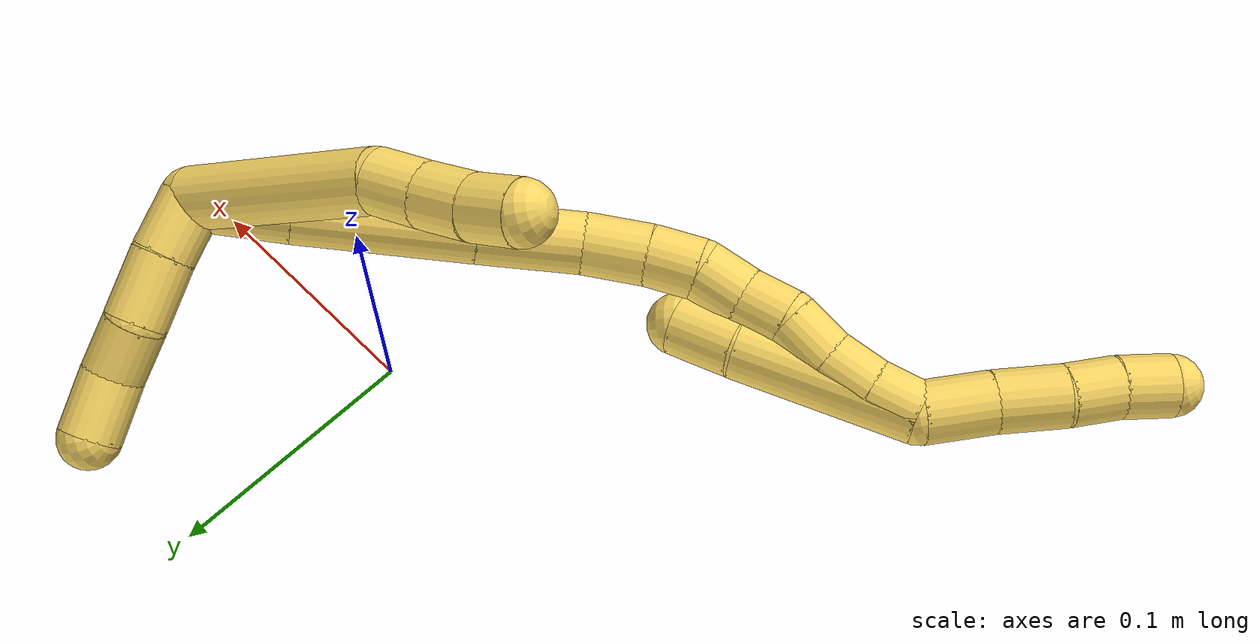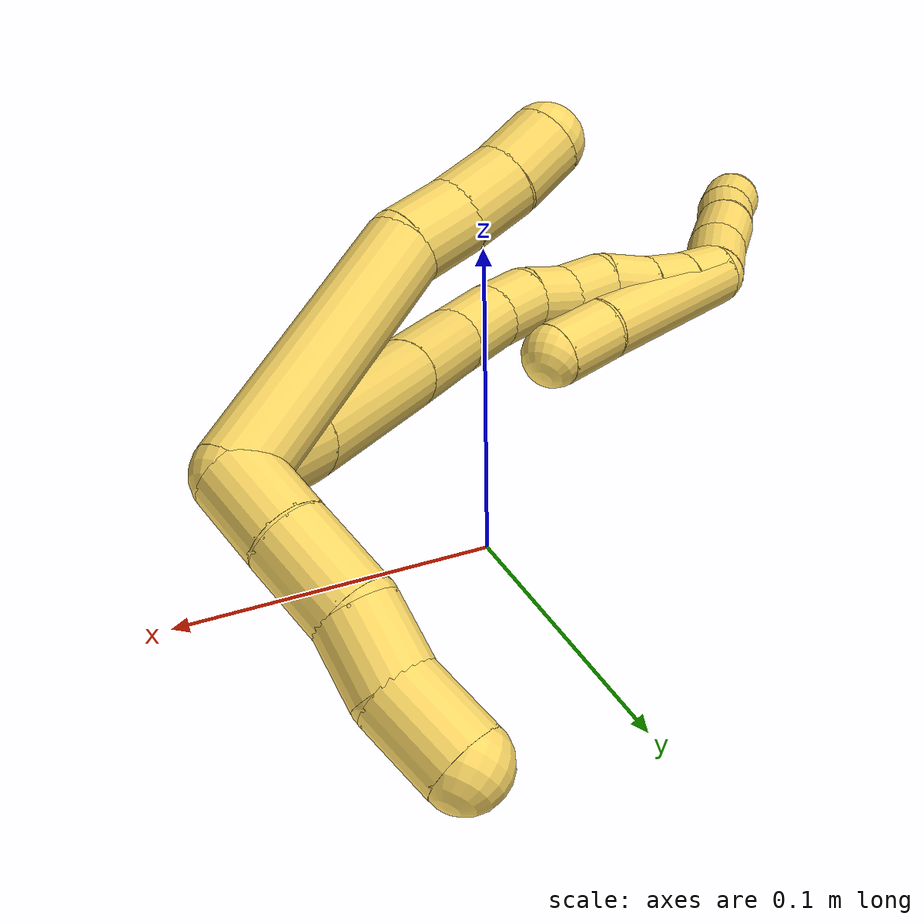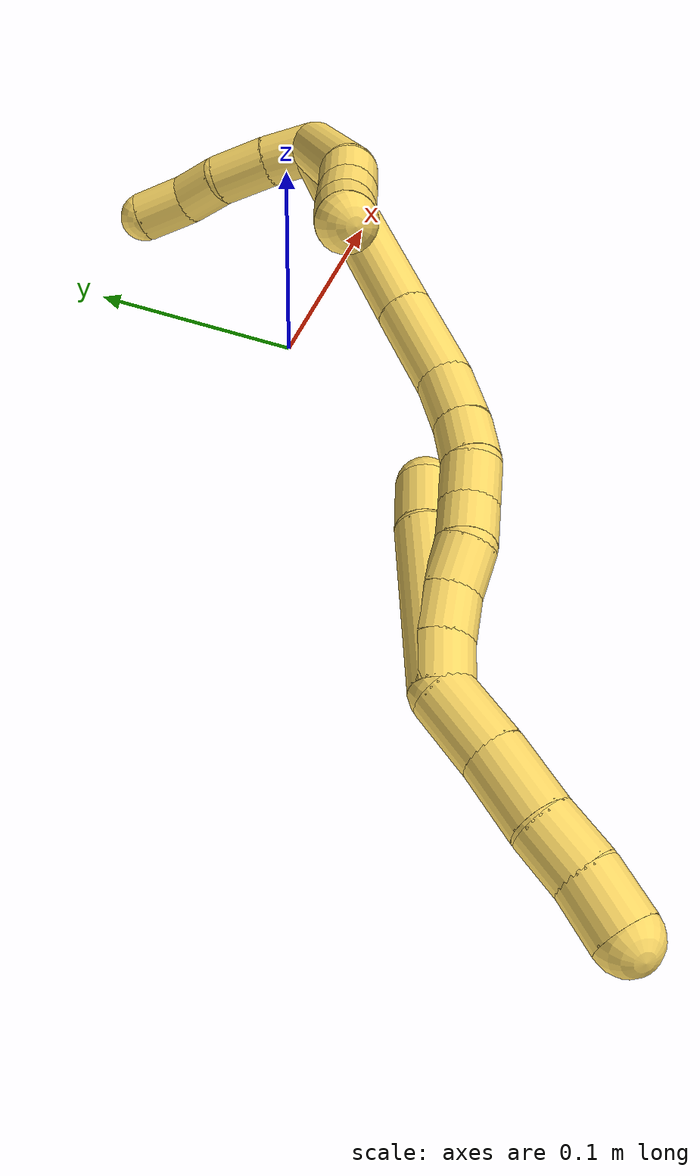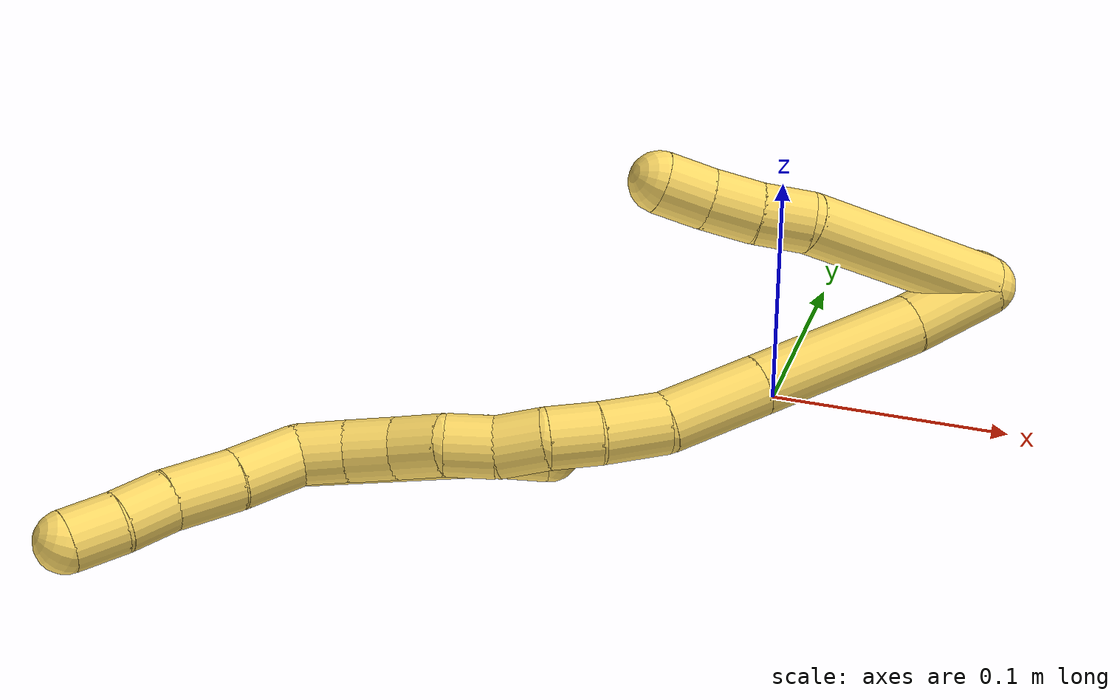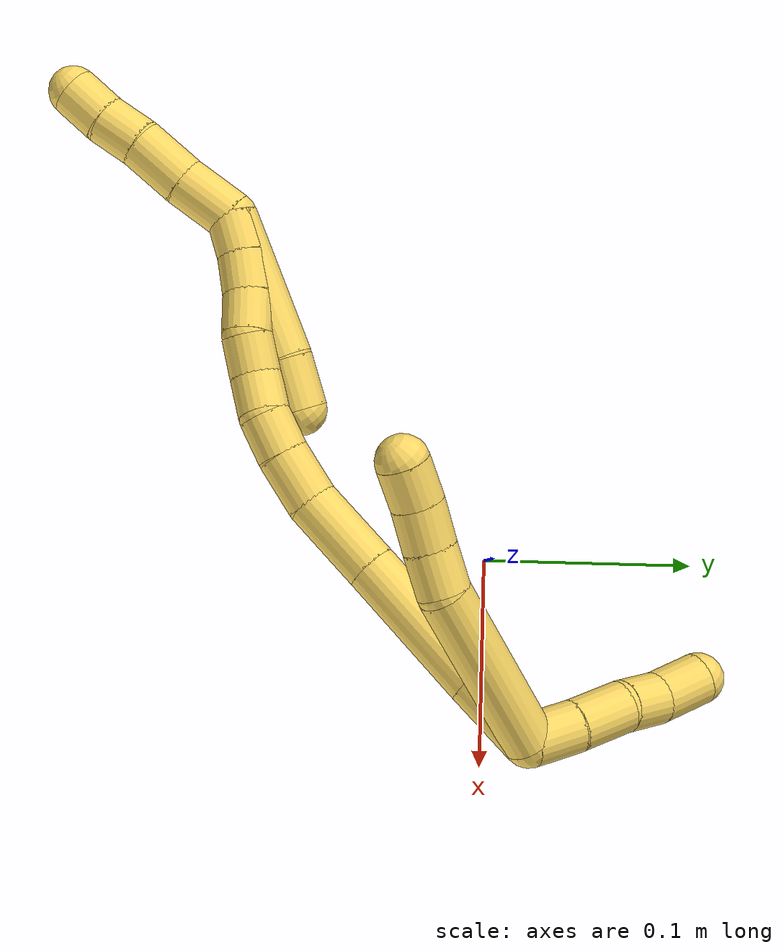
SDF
<sdf version="1.7">
 <world name="default">
  <model name="5">
   <static>0</static>
   <link name="5">
    <collision name="collision-cylinder-e_1_2_8">
     <pose>-0.001906 0.004543 0.043291 -0.104553 -0.043753 0.00229</pose>
     <geometry><cylinder><radius>0.0125</radius><length>0.08714</length></cylinder></geometry>
     <surface>
      <friction><ode><mu>1.16</mu><mu2>1.16</mu2><slip1>0</slip1><slip2>0</slip2></ode></friction>
      <contact><ode><kp>1e+06</kp><kd>1</kd><max_vel>0</max_vel><min_depth>0.001</min_depth></ode></contact>
     </surface>
    </collision>
    <visual name="visual-cylinder-e_1_2_8">
     <pose>-0.001906 0.004543 0.043291 -0.104553 -0.043753 0.00229</pose>
     <geometry><cylinder><radius>0.0125</radius><length>0.08714</length></cylinder></geometry>
     <material><ambient>1 0.858824 0.4 1</ambient></material>
    </visual>
    <collision name="collision-cylinder-e_2_8_9">
     <pose>-0.007242 0.011781 0.096347 -0.26925 -0.326524 0.044616</pose>
     <geometry><cylinder><radius>0.0125</radius><length>0.021393</length></cylinder></geometry>
     <surface>
      <friction><ode><mu>1.16</mu><mu2>1.16</mu2><slip1>0</slip1><slip2>0</slip2></ode></friction>
      <contact><ode><kp>1e+06</kp><kd>1</kd><max_vel>0</max_vel><min_depth>0.001</min_depth></ode></contact>
     </surface>
    </collision>
    <visual name="visual-cylinder-e_2_8_9">
     <pose>-0.007242 0.011781 0.096347 -0.26925 -0.326524 0.044616</pose>
     <geometry><cylinder><radius>0.0125</radius><length>0.021393</length></cylinder></geometry>
     <material><ambient>1 0.858824 0.4 1</ambient></material>
    </visual>
    <collision name="collision-cylinder-e_3_9_10">
     <pose>-0.013089 0.017601 0.115896 -0.309216 -0.231001 0.036159</pose>
     <geometry><cylinder><radius>0.0125</radius><length>0.021099</length></cylinder></geometry>
     <surface>
      <friction><ode><mu>1.16</mu><mu2>1.16</mu2><slip1>0</slip1><slip2>0</slip2></ode></friction>
      <contact><ode><kp>1e+06</kp><kd>1</kd><max_vel>0</max_vel><min_depth>0.001</min_depth></ode></contact>
     </surface>
    </collision>
    <visual name="visual-cylinder-e_3_9_10">
     <pose>-0.013089 0.017601 0.115896 -0.309216 -0.231001 0.036159</pose>
     <geometry><cylinder><radius>0.0125</radius><length>0.021099</length></cylinder></geometry>
     <material><ambient>1 0.858824 0.4 1</ambient></material>
    </visual>
    <collision name="collision-cylinder-e_4_10_6">
     <pose>-0.016836 0.023242 0.135456 -0.251851 -0.131203 0.016633</pose>
     <geometry><cylinder><radius>0.0125</radius><length>0.020368</length></cylinder></geometry>
     <surface>
      <friction><ode><mu>1.16</mu><mu2>1.16</mu2><slip1>0</slip1><slip2>0</slip2></ode></friction>
      <contact><ode><kp>1e+06</kp><kd>1</kd><max_vel>0</max_vel><min_depth>0.001</min_depth></ode></contact>
     </surface>
    </collision>
    <visual name="visual-cylinder-e_4_10_6">
     <pose>-0.016836 0.023242 0.135456 -0.251851 -0.131203 0.016633</pose>
     <geometry><cylinder><radius>0.0125</radius><length>0.020368</length></cylinder></geometry>
     <material><ambient>1 0.858824 0.4 1</ambient></material>
    </visual>
    <collision name="collision-cylinder-e_1_2_11">
     <pose>-0.005186 0.009411 -0.005815 -2.12426 -0.43837 0.760145</pose>
     <geometry><cylinder><radius>0.0125</radius><length>0.024436</length></cylinder></geometry>
     <surface>
      <friction><ode><mu>1.16</mu><mu2>1.16</mu2><slip1>0</slip1><slip2>0</slip2></ode></friction>
      <contact><ode><kp>1e+06</kp><kd>1</kd><max_vel>0</max_vel><min_depth>0.001</min_depth></ode></contact>
     </surface>
    </collision>
    <visual name="visual-cylinder-e_1_2_11">
     <pose>-0.005186 0.009411 -0.005815 -2.12426 -0.43837 0.760145</pose>
     <geometry><cylinder><radius>0.0125</radius><length>0.024436</length></cylinder></geometry>
     <material><ambient>1 0.858824 0.4 1</ambient></material>
    </visual>
    <collision name="collision-cylinder-e_2_11_12">
     <pose>-0.017232 0.029057 -0.017776 -2.11159 -0.521518 0.881156</pose>
     <geometry><cylinder><radius>0.0125</radius><length>0.027536</length></cylinder></geometry>
     <surface>
      <friction><ode><mu>1.16</mu><mu2>1.16</mu2><slip1>0</slip1><slip2>0</slip2></ode></friction>
      <contact><ode><kp>1e+06</kp><kd>1</kd><max_vel>0</max_vel><min_depth>0.001</min_depth></ode></contact>
     </surface>
    </collision>
    <visual name="visual-cylinder-e_2_11_12">
     <pose>-0.017232 0.029057 -0.017776 -2.11159 -0.521518 0.881156</pose>
     <geometry><cylinder><radius>0.0125</radius><length>0.027536</length></cylinder></geometry>
     <material><ambient>1 0.858824 0.4 1</ambient></material>
    </visual>
    <collision name="collision-cylinder-e_3_12_13">
     <pose>-0.030516 0.045485 -0.030635 -2.39647 -0.613037 1.36142</pose>
     <geometry><cylinder><radius>0.0125</radius><length>0.022336</length></cylinder></geometry>
     <surface>
      <friction><ode><mu>1.16</mu><mu2>1.16</mu2><slip1>0</slip1><slip2>0</slip2></ode></friction>
      <contact><ode><kp>1e+06</kp><kd>1</kd><max_vel>0</max_vel><min_depth>0.001</min_depth></ode></contact>
     </surface>
    </collision>
    <visual name="visual-cylinder-e_3_12_13">
     <pose>-0.030516 0.045485 -0.030635 -2.39647 -0.613037 1.36142</pose>
     <geometry><cylinder><radius>0.0125</radius><length>0.022336</length></cylinder></geometry>
     <material><ambient>1 0.858824 0.4 1</ambient></material>
    </visual>
    <collision name="collision-cylinder-e_4_13_5">
     <pose>-0.04356 0.061367 -0.042578 -2.0657 -0.541214 0.870445</pose>
     <geometry><cylinder><radius>0.0125</radius><length>0.025692</length></cylinder></geometry>
     <surface>
      <friction><ode><mu>1.16</mu><mu2>1.16</mu2><slip1>0</slip1><slip2>0</slip2></ode></friction>
      <contact><ode><kp>1e+06</kp><kd>1</kd><max_vel>0</max_vel><min_depth>0.001</min_depth></ode></contact>
     </surface>
    </collision>
    <visual name="visual-cylinder-e_4_13_5">
     <pose>-0.04356 0.061367 -0.042578 -2.0657 -0.541214 0.870445</pose>
     <geometry><cylinder><radius>0.0125</radius><length>0.025692</length></cylinder></geometry>
     <material><ambient>1 0.858824 0.4 1</ambient></material>
    </visual>
    <collision name="collision-cylinder-e_1_2_14">
     <pose>-0.01125 -0.00533 0.014225 0.358478 -0.637465 -0.119433</pose>
     <geometry><cylinder><radius>0.0125</radius><length>0.037807</length></cylinder></geometry>
     <surface>
      <friction><ode><mu>1.16</mu><mu2>1.16</mu2><slip1>0</slip1><slip2>0</slip2></ode></friction>
      <contact><ode><kp>1e+06</kp><kd>1</kd><max_vel>0</max_vel><min_depth>0.001</min_depth></ode></contact>
     </surface>
    </collision>
    <visual name="visual-cylinder-e_1_2_14">
     <pose>-0.01125 -0.00533 0.014225 0.358478 -0.637465 -0.119433</pose>
     <geometry><cylinder><radius>0.0125</radius><length>0.037807</length></cylinder></geometry>
     <material><ambient>1 0.858824 0.4 1</ambient></material>
    </visual>
    <collision name="collision-cylinder-e_2_14_15">
     <pose>-0.041534 -0.019339 0.057251 0.29273 -0.564146 -0.085392</pose>
     <geometry><cylinder><radius>0.0125</radius><length>0.071192</length></cylinder></geometry>
     <surface>
      <friction><ode><mu>1.16</mu><mu2>1.16</mu2><slip1>0</slip1><slip2>0</slip2></ode></friction>
      <contact><ode><kp>1e+06</kp><kd>1</kd><max_vel>0</max_vel><min_depth>0.001</min_depth></ode></contact>
     </surface>
    </collision>
    <visual name="visual-cylinder-e_2_14_15">
     <pose>-0.041534 -0.019339 0.057251 0.29273 -0.564146 -0.085392</pose>
     <geometry><cylinder><radius>0.0125</radius><length>0.071192</length></cylinder></geometry>
     <material><ambient>1 0.858824 0.4 1</ambient></material>
    </visual>
    <collision name="collision-cylinder-e_3_15_16">
     <pose>-0.071709 -0.033268 0.1032 0.296988 -0.555933 -0.085323</pose>
     <geometry><cylinder><radius>0.0125</radius><length>0.042226</length></cylinder></geometry>
     <surface>
      <friction><ode><mu>1.16</mu><mu2>1.16</mu2><slip1>0</slip1><slip2>0</slip2></ode></friction>
      <contact><ode><kp>1e+06</kp><kd>1</kd><max_vel>0</max_vel><min_depth>0.001</min_depth></ode></contact>
     </surface>
    </collision>
    <visual name="visual-cylinder-e_3_15_16">
     <pose>-0.071709 -0.033268 0.1032 0.296988 -0.555933 -0.085323</pose>
     <geometry><cylinder><radius>0.0125</radius><length>0.042226</length></cylinder></geometry>
     <material><ambient>1 0.858824 0.4 1</ambient></material>
    </visual>
    <collision name="collision-cylinder-e_4_16_17">
     <pose>-0.089068 -0.039091 0.132064 0.04905 -0.487383 -0.012198</pose>
     <geometry><cylinder><radius>0.0125</radius><length>0.026551</length></cylinder></geometry>
     <surface>
      <friction><ode><mu>1.16</mu><mu2>1.16</mu2><slip1>0</slip1><slip2>0</slip2></ode></friction>
      <contact><ode><kp>1e+06</kp><kd>1</kd><max_vel>0</max_vel><min_depth>0.001</min_depth></ode></contact>
     </surface>
    </collision>
    <visual name="visual-cylinder-e_4_16_17">
     <pose>-0.089068 -0.039091 0.132064 0.04905 -0.487383 -0.012198</pose>
     <geometry><cylinder><radius>0.0125</radius><length>0.026551</length></cylinder></geometry>
     <material><ambient>1 0.858824 0.4 1</ambient></material>
    </visual>
    <collision name="collision-cylinder-e_5_17_18">
     <pose>-0.100478 -0.038983 0.152798 -0.075653 -0.52116 0.020181</pose>
     <geometry><cylinder><radius>0.0125</radius><length>0.020857</length></cylinder></geometry>
     <surface>
      <friction><ode><mu>1.16</mu><mu2>1.16</mu2><slip1>0</slip1><slip2>0</slip2></ode></friction>
      <contact><ode><kp>1e+06</kp><kd>1</kd><max_vel>0</max_vel><min_depth>0.001</min_depth></ode></contact>
     </surface>
    </collision>
    <visual name="visual-cylinder-e_5_17_18">
     <pose>-0.100478 -0.038983 0.152798 -0.075653 -0.52116 0.020181</pose>
     <geometry><cylinder><radius>0.0125</radius><length>0.020857</length></cylinder></geometry>
     <material><ambient>1 0.858824 0.4 1</ambient></material>
    </visual>
    <collision name="collision-cylinder-e_6_18_19">
     <pose>-0.112711 -0.036262 0.168678 -0.288548 -0.777174 0.118819</pose>
     <geometry><cylinder><radius>0.0125</radius><length>0.020081</length></cylinder></geometry>
     <surface>
      <friction><ode><mu>1.16</mu><mu2>1.16</mu2><slip1>0</slip1><slip2>0</slip2></ode></friction>
      <contact><ode><kp>1e+06</kp><kd>1</kd><max_vel>0</max_vel><min_depth>0.001</min_depth></ode></contact>
     </surface>
    </collision>
    <visual name="visual-cylinder-e_6_18_19">
     <pose>-0.112711 -0.036262 0.168678 -0.288548 -0.777174 0.118819</pose>
     <geometry><cylinder><radius>0.0125</radius><length>0.020081</length></cylinder></geometry>
     <material><ambient>1 0.858824 0.4 1</ambient></material>
    </visual>
    <collision name="collision-cylinder-e_7_19_20">
     <pose>-0.124827 -0.031266 0.183692 -0.348259 -0.529427 0.095298</pose>
     <geometry><cylinder><radius>0.0125</radius><length>0.020096</length></cylinder></geometry>
     <surface>
      <friction><ode><mu>1.16</mu><mu2>1.16</mu2><slip1>0</slip1><slip2>0</slip2></ode></friction>
      <contact><ode><kp>1e+06</kp><kd>1</kd><max_vel>0</max_vel><min_depth>0.001</min_depth></ode></contact>
     </surface>
    </collision>
    <visual name="visual-cylinder-e_7_19_20">
     <pose>-0.124827 -0.031266 0.183692 -0.348259 -0.529427 0.095298</pose>
     <geometry><cylinder><radius>0.0125</radius><length>0.020096</length></cylinder></geometry>
     <material><ambient>1 0.858824 0.4 1</ambient></material>
    </visual>
    <collision name="collision-cylinder-e_8_20_21">
     <pose>-0.13738 -0.024105 0.197792 -0.6149 -0.798717 0.266422</pose>
     <geometry><cylinder><radius>0.0125</radius><length>0.020876</length></cylinder></geometry>
     <surface>
      <friction><ode><mu>1.16</mu><mu2>1.16</mu2><slip1>0</slip1><slip2>0</slip2></ode></friction>
      <contact><ode><kp>1e+06</kp><kd>1</kd><max_vel>0</max_vel><min_depth>0.001</min_depth></ode></contact>
     </surface>
    </collision>
    <visual name="visual-cylinder-e_8_20_21">
     <pose>-0.13738 -0.024105 0.197792 -0.6149 -0.798717 0.266422</pose>
     <geometry><cylinder><radius>0.0125</radius><length>0.020876</length></cylinder></geometry>
     <material><ambient>1 0.858824 0.4 1</ambient></material>
    </visual>
    <collision name="collision-cylinder-e_9_21_22">
     <pose>-0.151358 -0.016863 0.210844 -0.404524 -0.699276 0.149264</pose>
     <geometry><cylinder><radius>0.0125</radius><length>0.020196</length></cylinder></geometry>
     <surface>
      <friction><ode><mu>1.16</mu><mu2>1.16</mu2><slip1>0</slip1><slip2>0</slip2></ode></friction>
      <contact><ode><kp>1e+06</kp><kd>1</kd><max_vel>0</max_vel><min_depth>0.001</min_depth></ode></contact>
     </surface>
    </collision>
    <visual name="visual-cylinder-e_9_21_22">
     <pose>-0.151358 -0.016863 0.210844 -0.404524 -0.699276 0.149264</pose>
     <geometry><cylinder><radius>0.0125</radius><length>0.020196</length></cylinder></geometry>
     <material><ambient>1 0.858824 0.4 1</ambient></material>
    </visual>
    <collision name="collision-cylinder-e_10_22_1">
     <pose>-0.163736 -0.011816 0.225861 -0.248215 -0.624089 0.08044</pose>
     <geometry><cylinder><radius>0.0125</radius><length>0.020118</length></cylinder></geometry>
     <surface>
      <friction><ode><mu>1.16</mu><mu2>1.16</mu2><slip1>0</slip1><slip2>0</slip2></ode></friction>
      <contact><ode><kp>1e+06</kp><kd>1</kd><max_vel>0</max_vel><min_depth>0.001</min_depth></ode></contact>
     </surface>
    </collision>
    <visual name="visual-cylinder-e_10_22_1">
     <pose>-0.163736 -0.011816 0.225861 -0.248215 -0.624089 0.08044</pose>
     <geometry><cylinder><radius>0.0125</radius><length>0.020118</length></cylinder></geometry>
     <material><ambient>1 0.858824 0.4 1</ambient></material>
    </visual>
    <collision name="collision-cylinder-e_1_1_23">
     <pose>-0.174672 -0.015516 0.246179 0.431037 -0.354749 -0.078446</pose>
     <geometry><cylinder><radius>0.0125</radius><length>0.029122</length></cylinder></geometry>
     <surface>
      <friction><ode><mu>1.16</mu><mu2>1.16</mu2><slip1>0</slip1><slip2>0</slip2></ode></friction>
      <contact><ode><kp>1e+06</kp><kd>1</kd><max_vel>0</max_vel><min_depth>0.001</min_depth></ode></contact>
     </surface>
    </collision>
    <visual name="visual-cylinder-e_1_1_23">
     <pose>-0.174672 -0.015516 0.246179 0.431037 -0.354749 -0.078446</pose>
     <geometry><cylinder><radius>0.0125</radius><length>0.029122</length></cylinder></geometry>
     <material><ambient>1 0.858824 0.4 1</ambient></material>
    </visual>
    <collision name="collision-cylinder-e_2_23_24">
     <pose>-0.184765 -0.025677 0.271082 0.342509 -0.362749 -0.063413</pose>
     <geometry><cylinder><radius>0.0125</radius><length>0.028384</length></cylinder></geometry>
     <surface>
      <friction><ode><mu>1.16</mu><mu2>1.16</mu2><slip1>0</slip1><slip2>0</slip2></ode></friction>
      <contact><ode><kp>1e+06</kp><kd>1</kd><max_vel>0</max_vel><min_depth>0.001</min_depth></ode></contact>
     </surface>
    </collision>
    <visual name="visual-cylinder-e_2_23_24">
     <pose>-0.184765 -0.025677 0.271082 0.342509 -0.362749 -0.063413</pose>
     <geometry><cylinder><radius>0.0125</radius><length>0.028384</length></cylinder></geometry>
     <material><ambient>1 0.858824 0.4 1</ambient></material>
    </visual>
    <collision name="collision-cylinder-e_3_24_25">
     <pose>-0.193678 -0.034684 0.292316 0.480274 -0.374893 -0.092821</pose>
     <geometry><cylinder><radius>0.0125</radius><length>0.021172</length></cylinder></geometry>
     <surface>
      <friction><ode><mu>1.16</mu><mu2>1.16</mu2><slip1>0</slip1><slip2>0</slip2></ode></friction>
      <contact><ode><kp>1e+06</kp><kd>1</kd><max_vel>0</max_vel><min_depth>0.001</min_depth></ode></contact>
     </surface>
    </collision>
    <visual name="visual-cylinder-e_3_24_25">
     <pose>-0.193678 -0.034684 0.292316 0.480274 -0.374893 -0.092821</pose>
     <geometry><cylinder><radius>0.0125</radius><length>0.021172</length></cylinder></geometry>
     <material><ambient>1 0.858824 0.4 1</ambient></material>
    </visual>
    <collision name="collision-cylinder-e_4_25_4">
     <pose>-0.202063 -0.042564 0.310122 0.351801 -0.436714 -0.078837</pose>
     <geometry><cylinder><radius>0.0125</radius><length>0.021322</length></cylinder></geometry>
     <surface>
      <friction><ode><mu>1.16</mu><mu2>1.16</mu2><slip1>0</slip1><slip2>0</slip2></ode></friction>
      <contact><ode><kp>1e+06</kp><kd>1</kd><max_vel>0</max_vel><min_depth>0.001</min_depth></ode></contact>
     </surface>
    </collision>
    <visual name="visual-cylinder-e_4_25_4">
     <pose>-0.202063 -0.042564 0.310122 0.351801 -0.436714 -0.078837</pose>
     <geometry><cylinder><radius>0.0125</radius><length>0.021322</length></cylinder></geometry>
     <material><ambient>1 0.858824 0.4 1</ambient></material>
    </visual>
    <collision name="collision-cylinder-e_1_1_26">
     <pose>-0.151022 -0.014998 0.202111 2.9792 0.525176 2.55364</pose>
     <geometry><cylinder><radius>0.0125</radius><length>0.074165</length></cylinder></geometry>
     <surface>
      <friction><ode><mu>1.16</mu><mu2>1.16</mu2><slip1>0</slip1><slip2>0</slip2></ode></friction>
      <contact><ode><kp>1e+06</kp><kd>1</kd><max_vel>0</max_vel><min_depth>0.001</min_depth></ode></contact>
     </surface>
    </collision>
    <visual name="visual-cylinder-e_1_1_26">
     <pose>-0.151022 -0.014998 0.202111 2.9792 0.525176 2.55364</pose>
     <geometry><cylinder><radius>0.0125</radius><length>0.074165</length></cylinder></geometry>
     <material><ambient>1 0.858824 0.4 1</ambient></material>
    </visual>
    <collision name="collision-cylinder-e_2_26_3">
     <pose>-0.126853 -0.023348 0.159234 2.86677 0.446456 2.04735</pose>
     <geometry><cylinder><radius>0.0125</radius><length>0.025835</length></cylinder></geometry>
     <surface>
      <friction><ode><mu>1.16</mu><mu2>1.16</mu2><slip1>0</slip1><slip2>0</slip2></ode></friction>
      <contact><ode><kp>1e+06</kp><kd>1</kd><max_vel>0</max_vel><min_depth>0.001</min_depth></ode></contact>
     </surface>
    </collision>
    <visual name="visual-cylinder-e_2_26_3">
     <pose>-0.126853 -0.023348 0.159234 2.86677 0.446456 2.04735</pose>
     <geometry><cylinder><radius>0.0125</radius><length>0.025835</length></cylinder></geometry>
     <material><ambient>1 0.858824 0.4 1</ambient></material>
    </visual>
    <collision name="collision-sphere-3">
     <pose>-0.121275 -0.02651 0.14802 0 -0 0</pose>
     <geometry><sphere><radius>0.0125</radius></sphere></geometry>
     <surface>
      <friction><ode><mu>1.16</mu><mu2>1.16</mu2><slip1>0</slip1><slip2>0</slip2></ode></friction>
      <contact><ode><kp>1e+06</kp><kd>1</kd><max_vel>0</max_vel><min_depth>0.001</min_depth></ode></contact>
     </surface>
    </collision>
    <visual name="visual-sphere-3">
     <pose>-0.121275 -0.02651 0.14802 0 -0 0</pose>
     <geometry><sphere><radius>0.0125</radius></sphere></geometry>
     <material><ambient>1 0.858824 0.4 1</ambient></material>
    </visual>
    <collision name="collision-sphere-26">
     <pose>-0.13243 -0.020186 0.170448 0 -0 0</pose>
     <geometry><sphere><radius>0.0125</radius></sphere></geometry>
     <surface>
      <friction><ode><mu>1.16</mu><mu2>1.16</mu2><slip1>0</slip1><slip2>0</slip2></ode></friction>
      <contact><ode><kp>1e+06</kp><kd>1</kd><max_vel>0</max_vel><min_depth>0.001</min_depth></ode></contact>
     </surface>
    </collision>
    <visual name="visual-sphere-26">
     <pose>-0.13243 -0.020186 0.170448 0 -0 0</pose>
     <geometry><sphere><radius>0.0125</radius></sphere></geometry>
     <material><ambient>1 0.858824 0.4 1</ambient></material>
    </visual>
    <collision name="collision-sphere-4">
     <pose>-0.206572 -0.045893 0.31919 0 -0 0</pose>
     <geometry><sphere><radius>0.0125</radius></sphere></geometry>
     <surface>
      <friction><ode><mu>1.16</mu><mu2>1.16</mu2><slip1>0</slip1><slip2>0</slip2></ode></friction>
      <contact><ode><kp>1e+06</kp><kd>1</kd><max_vel>0</max_vel><min_depth>0.001</min_depth></ode></contact>
     </surface>
    </collision>
    <visual name="visual-sphere-4">
     <pose>-0.206572 -0.045893 0.31919 0 -0 0</pose>
     <geometry><sphere><radius>0.0125</radius></sphere></geometry>
     <material><ambient>1 0.858824 0.4 1</ambient></material>
    </visual>
    <collision name="collision-sphere-25">
     <pose>-0.197554 -0.039236 0.301053 0 -0 0</pose>
     <geometry><sphere><radius>0.0125</radius></sphere></geometry>
     <surface>
      <friction><ode><mu>1.16</mu><mu2>1.16</mu2><slip1>0</slip1><slip2>0</slip2></ode></friction>
      <contact><ode><kp>1e+06</kp><kd>1</kd><max_vel>0</max_vel><min_depth>0.001</min_depth></ode></contact>
     </surface>
    </collision>
    <visual name="visual-sphere-25">
     <pose>-0.197554 -0.039236 0.301053 0 -0 0</pose>
     <geometry><sphere><radius>0.0125</radius></sphere></geometry>
     <material><ambient>1 0.858824 0.4 1</ambient></material>
    </visual>
    <collision name="collision-sphere-24">
     <pose>-0.189801 -0.030133 0.28358 0 -0 0</pose>
     <geometry><sphere><radius>0.0125</radius></sphere></geometry>
     <surface>
      <friction><ode><mu>1.16</mu><mu2>1.16</mu2><slip1>0</slip1><slip2>0</slip2></ode></friction>
      <contact><ode><kp>1e+06</kp><kd>1</kd><max_vel>0</max_vel><min_depth>0.001</min_depth></ode></contact>
     </surface>
    </collision>
    <visual name="visual-sphere-24">
     <pose>-0.189801 -0.030133 0.28358 0 -0 0</pose>
     <geometry><sphere><radius>0.0125</radius></sphere></geometry>
     <material><ambient>1 0.858824 0.4 1</ambient></material>
    </visual>
    <collision name="collision-sphere-23">
     <pose>-0.179729 -0.02122 0.258584 0 -0 0</pose>
     <geometry><sphere><radius>0.0125</radius></sphere></geometry>
     <surface>
      <friction><ode><mu>1.16</mu><mu2>1.16</mu2><slip1>0</slip1><slip2>0</slip2></ode></friction>
      <contact><ode><kp>1e+06</kp><kd>1</kd><max_vel>0</max_vel><min_depth>0.001</min_depth></ode></contact>
     </surface>
    </collision>
    <visual name="visual-sphere-23">
     <pose>-0.179729 -0.02122 0.258584 0 -0 0</pose>
     <geometry><sphere><radius>0.0125</radius></sphere></geometry>
     <material><ambient>1 0.858824 0.4 1</ambient></material>
    </visual>
    <collision name="collision-sphere-1">
     <pose>-0.169614 -0.009811 0.233774 0 -0 0</pose>
     <geometry><sphere><radius>0.0125</radius></sphere></geometry>
     <surface>
      <friction><ode><mu>1.16</mu><mu2>1.16</mu2><slip1>0</slip1><slip2>0</slip2></ode></friction>
      <contact><ode><kp>1e+06</kp><kd>1</kd><max_vel>0</max_vel><min_depth>0.001</min_depth></ode></contact>
     </surface>
    </collision>
    <visual name="visual-sphere-1">
     <pose>-0.169614 -0.009811 0.233774 0 -0 0</pose>
     <geometry><sphere><radius>0.0125</radius></sphere></geometry>
     <material><ambient>1 0.858824 0.4 1</ambient></material>
    </visual>
    <collision name="collision-sphere-22">
     <pose>-0.157857 -0.013822 0.217948 0 -0 0</pose>
     <geometry><sphere><radius>0.0125</radius></sphere></geometry>
     <surface>
      <friction><ode><mu>1.16</mu><mu2>1.16</mu2><slip1>0</slip1><slip2>0</slip2></ode></friction>
      <contact><ode><kp>1e+06</kp><kd>1</kd><max_vel>0</max_vel><min_depth>0.001</min_depth></ode></contact>
     </surface>
    </collision>
    <visual name="visual-sphere-22">
     <pose>-0.157857 -0.013822 0.217948 0 -0 0</pose>
     <geometry><sphere><radius>0.0125</radius></sphere></geometry>
     <material><ambient>1 0.858824 0.4 1</ambient></material>
    </visual>
    <collision name="collision-sphere-21">
     <pose>-0.144858 -0.019905 0.20374 0 -0 0</pose>
     <geometry><sphere><radius>0.0125</radius></sphere></geometry>
     <surface>
      <friction><ode><mu>1.16</mu><mu2>1.16</mu2><slip1>0</slip1><slip2>0</slip2></ode></friction>
      <contact><ode><kp>1e+06</kp><kd>1</kd><max_vel>0</max_vel><min_depth>0.001</min_depth></ode></contact>
     </surface>
    </collision>
    <visual name="visual-sphere-21">
     <pose>-0.144858 -0.019905 0.20374 0 -0 0</pose>
     <geometry><sphere><radius>0.0125</radius></sphere></geometry>
     <material><ambient>1 0.858824 0.4 1</ambient></material>
    </visual>
    <collision name="collision-sphere-11">
     <pose>-0.010372 0.018823 -0.01163 0 -0 0</pose>
     <geometry><sphere><radius>0.0125</radius></sphere></geometry>
     <surface>
      <friction><ode><mu>1.16</mu><mu2>1.16</mu2><slip1>0</slip1><slip2>0</slip2></ode></friction>
      <contact><ode><kp>1e+06</kp><kd>1</kd><max_vel>0</max_vel><min_depth>0.001</min_depth></ode></contact>
     </surface>
    </collision>
    <visual name="visual-sphere-11">
     <pose>-0.010372 0.018823 -0.01163 0 -0 0</pose>
     <geometry><sphere><radius>0.0125</radius></sphere></geometry>
     <material><ambient>1 0.858824 0.4 1</ambient></material>
    </visual>
    <collision name="collision-sphere-6">
     <pose>-0.018169 0.025758 0.145234 0 -0 0</pose>
     <geometry><sphere><radius>0.0125</radius></sphere></geometry>
     <surface>
      <friction><ode><mu>1.16</mu><mu2>1.16</mu2><slip1>0</slip1><slip2>0</slip2></ode></friction>
      <contact><ode><kp>1e+06</kp><kd>1</kd><max_vel>0</max_vel><min_depth>0.001</min_depth></ode></contact>
     </surface>
    </collision>
    <visual name="visual-sphere-6">
     <pose>-0.018169 0.025758 0.145234 0 -0 0</pose>
     <geometry><sphere><radius>0.0125</radius></sphere></geometry>
     <material><ambient>1 0.858824 0.4 1</ambient></material>
    </visual>
    <collision name="collision-sphere-10">
     <pose>-0.015504 0.020726 0.125678 0 -0 0</pose>
     <geometry><sphere><radius>0.0125</radius></sphere></geometry>
     <surface>
      <friction><ode><mu>1.16</mu><mu2>1.16</mu2><slip1>0</slip1><slip2>0</slip2></ode></friction>
      <contact><ode><kp>1e+06</kp><kd>1</kd><max_vel>0</max_vel><min_depth>0.001</min_depth></ode></contact>
     </surface>
    </collision>
    <visual name="visual-sphere-10">
     <pose>-0.015504 0.020726 0.125678 0 -0 0</pose>
     <geometry><sphere><radius>0.0125</radius></sphere></geometry>
     <material><ambient>1 0.858824 0.4 1</ambient></material>
    </visual>
    <collision name="collision-sphere-9">
     <pose>-0.010673 0.014476 0.106114 0 -0 0</pose>
     <geometry><sphere><radius>0.0125</radius></sphere></geometry>
     <surface>
      <friction><ode><mu>1.16</mu><mu2>1.16</mu2><slip1>0</slip1><slip2>0</slip2></ode></friction>
      <contact><ode><kp>1e+06</kp><kd>1</kd><max_vel>0</max_vel><min_depth>0.001</min_depth></ode></contact>
     </surface>
    </collision>
    <visual name="visual-sphere-9">
     <pose>-0.010673 0.014476 0.106114 0 -0 0</pose>
     <geometry><sphere><radius>0.0125</radius></sphere></geometry>
     <material><ambient>1 0.858824 0.4 1</ambient></material>
    </visual>
    <collision name="collision-sphere-2">
     <geometry><sphere><radius>0.0125</radius></sphere></geometry>
     <surface>
      <friction><ode><mu>1.16</mu><mu2>1.16</mu2><slip1>0</slip1><slip2>0</slip2></ode></friction>
      <contact><ode><kp>1e+06</kp><kd>1</kd><max_vel>0</max_vel><min_depth>0.001</min_depth></ode></contact>
     </surface>
    </collision>
    <visual name="visual-sphere-2">
     <geometry><sphere><radius>0.0125</radius></sphere></geometry>
     <material><ambient>1 0.858824 0.4 1</ambient></material>
    </visual>
    <collision name="collision-sphere-19">
     <pose>-0.119752 -0.034225 0.17554 0 -0 0</pose>
     <geometry><sphere><radius>0.0125</radius></sphere></geometry>
     <surface>
      <friction><ode><mu>1.16</mu><mu2>1.16</mu2><slip1>0</slip1><slip2>0</slip2></ode></friction>
      <contact><ode><kp>1e+06</kp><kd>1</kd><max_vel>0</max_vel><min_depth>0.001</min_depth></ode></contact>
     </surface>
    </collision>
    <visual name="visual-sphere-19">
     <pose>-0.119752 -0.034225 0.17554 0 -0 0</pose>
     <geometry><sphere><radius>0.0125</radius></sphere></geometry>
     <material><ambient>1 0.858824 0.4 1</ambient></material>
    </visual>
    <collision name="collision-sphere-8">
     <pose>-0.003811 0.009085 0.086581 0 -0 0</pose>
     <geometry><sphere><radius>0.0125</radius></sphere></geometry>
     <surface>
      <friction><ode><mu>1.16</mu><mu2>1.16</mu2><slip1>0</slip1><slip2>0</slip2></ode></friction>
      <contact><ode><kp>1e+06</kp><kd>1</kd><max_vel>0</max_vel><min_depth>0.001</min_depth></ode></contact>
     </surface>
    </collision>
    <visual name="visual-sphere-8">
     <pose>-0.003811 0.009085 0.086581 0 -0 0</pose>
     <geometry><sphere><radius>0.0125</radius></sphere></geometry>
     <material><ambient>1 0.858824 0.4 1</ambient></material>
    </visual>
    <collision name="collision-sphere-12">
     <pose>-0.024091 0.039291 -0.023922 0 -0 0</pose>
     <geometry><sphere><radius>0.0125</radius></sphere></geometry>
     <surface>
      <friction><ode><mu>1.16</mu><mu2>1.16</mu2><slip1>0</slip1><slip2>0</slip2></ode></friction>
      <contact><ode><kp>1e+06</kp><kd>1</kd><max_vel>0</max_vel><min_depth>0.001</min_depth></ode></contact>
     </surface>
    </collision>
    <visual name="visual-sphere-12">
     <pose>-0.024091 0.039291 -0.023922 0 -0 0</pose>
     <geometry><sphere><radius>0.0125</radius></sphere></geometry>
     <material><ambient>1 0.858824 0.4 1</ambient></material>
    </visual>
    <collision name="collision-sphere-13">
     <pose>-0.036942 0.051678 -0.037349 0 -0 0</pose>
     <geometry><sphere><radius>0.0125</radius></sphere></geometry>
     <surface>
      <friction><ode><mu>1.16</mu><mu2>1.16</mu2><slip1>0</slip1><slip2>0</slip2></ode></friction>
      <contact><ode><kp>1e+06</kp><kd>1</kd><max_vel>0</max_vel><min_depth>0.001</min_depth></ode></contact>
     </surface>
    </collision>
    <visual name="visual-sphere-13">
     <pose>-0.036942 0.051678 -0.037349 0 -0 0</pose>
     <geometry><sphere><radius>0.0125</radius></sphere></geometry>
     <material><ambient>1 0.858824 0.4 1</ambient></material>
    </visual>
    <collision name="collision-sphere-5">
     <pose>-0.050178 0.071056 -0.047808 0 -0 0</pose>
     <geometry><sphere><radius>0.0125</radius></sphere></geometry>
     <surface>
      <friction><ode><mu>1.16</mu><mu2>1.16</mu2><slip1>0</slip1><slip2>0</slip2></ode></friction>
      <contact><ode><kp>1e+06</kp><kd>1</kd><max_vel>0</max_vel><min_depth>0.001</min_depth></ode></contact>
     </surface>
    </collision>
    <visual name="visual-sphere-5">
     <pose>-0.050178 0.071056 -0.047808 0 -0 0</pose>
     <geometry><sphere><radius>0.0125</radius></sphere></geometry>
     <material><ambient>1 0.858824 0.4 1</ambient></material>
    </visual>
    <collision name="collision-sphere-14">
     <pose>-0.022501 -0.010659 0.02845 0 -0 0</pose>
     <geometry><sphere><radius>0.0125</radius></sphere></geometry>
     <surface>
      <friction><ode><mu>1.16</mu><mu2>1.16</mu2><slip1>0</slip1><slip2>0</slip2></ode></friction>
      <contact><ode><kp>1e+06</kp><kd>1</kd><max_vel>0</max_vel><min_depth>0.001</min_depth></ode></contact>
     </surface>
    </collision>
    <visual name="visual-sphere-14">
     <pose>-0.022501 -0.010659 0.02845 0 -0 0</pose>
     <geometry><sphere><radius>0.0125</radius></sphere></geometry>
     <material><ambient>1 0.858824 0.4 1</ambient></material>
    </visual>
    <collision name="collision-sphere-15">
     <pose>-0.060567 -0.02802 0.086051 0 -0 0</pose>
     <geometry><sphere><radius>0.0125</radius></sphere></geometry>
     <surface>
      <friction><ode><mu>1.16</mu><mu2>1.16</mu2><slip1>0</slip1><slip2>0</slip2></ode></friction>
      <contact><ode><kp>1e+06</kp><kd>1</kd><max_vel>0</max_vel><min_depth>0.001</min_depth></ode></contact>
     </surface>
    </collision>
    <visual name="visual-sphere-15">
     <pose>-0.060567 -0.02802 0.086051 0 -0 0</pose>
     <geometry><sphere><radius>0.0125</radius></sphere></geometry>
     <material><ambient>1 0.858824 0.4 1</ambient></material>
    </visual>
    <collision name="collision-sphere-16">
     <pose>-0.082851 -0.038516 0.120348 0 -0 0</pose>
     <geometry><sphere><radius>0.0125</radius></sphere></geometry>
     <surface>
      <friction><ode><mu>1.16</mu><mu2>1.16</mu2><slip1>0</slip1><slip2>0</slip2></ode></friction>
      <contact><ode><kp>1e+06</kp><kd>1</kd><max_vel>0</max_vel><min_depth>0.001</min_depth></ode></contact>
     </surface>
    </collision>
    <visual name="visual-sphere-16">
     <pose>-0.082851 -0.038516 0.120348 0 -0 0</pose>
     <geometry><sphere><radius>0.0125</radius></sphere></geometry>
     <material><ambient>1 0.858824 0.4 1</ambient></material>
    </visual>
    <collision name="collision-sphere-17">
     <pose>-0.095285 -0.039666 0.14378 0 -0 0</pose>
     <geometry><sphere><radius>0.0125</radius></sphere></geometry>
     <surface>
      <friction><ode><mu>1.16</mu><mu2>1.16</mu2><slip1>0</slip1><slip2>0</slip2></ode></friction>
      <contact><ode><kp>1e+06</kp><kd>1</kd><max_vel>0</max_vel><min_depth>0.001</min_depth></ode></contact>
     </surface>
    </collision>
    <visual name="visual-sphere-17">
     <pose>-0.095285 -0.039666 0.14378 0 -0 0</pose>
     <geometry><sphere><radius>0.0125</radius></sphere></geometry>
     <material><ambient>1 0.858824 0.4 1</ambient></material>
    </visual>
    <collision name="collision-sphere-18">
     <pose>-0.10567 -0.038299 0.161816 0 -0 0</pose>
     <geometry><sphere><radius>0.0125</radius></sphere></geometry>
     <surface>
      <friction><ode><mu>1.16</mu><mu2>1.16</mu2><slip1>0</slip1><slip2>0</slip2></ode></friction>
      <contact><ode><kp>1e+06</kp><kd>1</kd><max_vel>0</max_vel><min_depth>0.001</min_depth></ode></contact>
     </surface>
    </collision>
    <visual name="visual-sphere-18">
     <pose>-0.10567 -0.038299 0.161816 0 -0 0</pose>
     <geometry><sphere><radius>0.0125</radius></sphere></geometry>
     <material><ambient>1 0.858824 0.4 1</ambient></material>
    </visual>
    <collision name="collision-sphere-20">
     <pose>-0.129901 -0.028306 0.191844 0 -0 0</pose>
     <geometry><sphere><radius>0.0125</radius></sphere></geometry>
     <surface>
      <friction><ode><mu>1.16</mu><mu2>1.16</mu2><slip1>0</slip1><slip2>0</slip2></ode></friction>
      <contact><ode><kp>1e+06</kp><kd>1</kd><max_vel>0</max_vel><min_depth>0.001</min_depth></ode></contact>
     </surface>
    </collision>
    <visual name="visual-sphere-20">
     <pose>-0.129901 -0.028306 0.191844 0 -0 0</pose>
     <geometry><sphere><radius>0.0125</radius></sphere></geometry>
     <material><ambient>1 0.858824 0.4 1</ambient></material>
    </visual>
    <inertial>
     <pose>-0.081895 -0.008926 0.121428 0 -0 0</pose>
     <mass>0.75</mass>
     <inertia>
      <ixx>0.000102</ixx>
      <ixy>0</ixy>
      <ixz>0</ixz>
      <iyy>0.000187</iyy>
      <iyz>0</iyz>
      <izz>5.5e-05</izz>
     </inertia>
    </inertial>
   </link>
   <pose>0.082291 0.019777 0.057033 0.532685 -1.02052 0.080179</pose>
  </model>
 </world>
</sdf>
